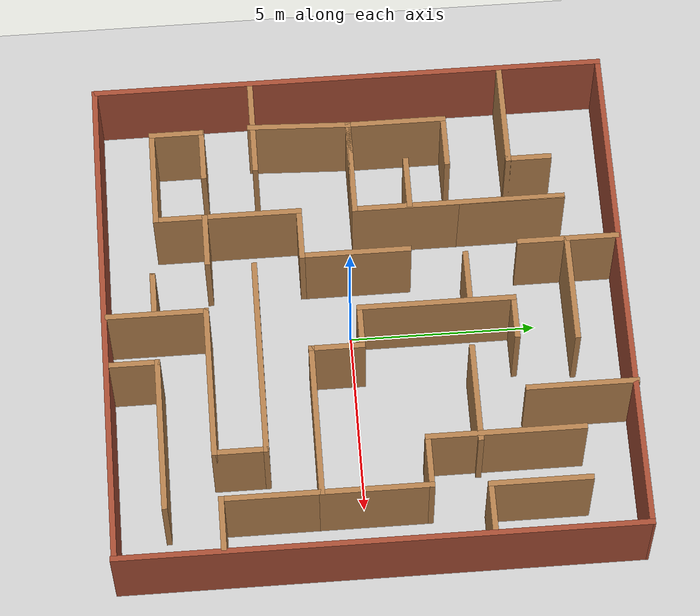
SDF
<sdf version="1.7">
 <world name="default">
  <light name="sun" type="directional">
   <pose>0 0 10 0 -0 0</pose>
   <diffuse>0.8 0.8 0.8 1</diffuse>
   <specular>0.2 0.2 0.2 1</specular>
   <attenuation>
    <range>1000</range>
    <constant>0.9</constant>
    <linear>0.01</linear>
    <quadratic>0.001</quadratic>
   </attenuation>
   <direction>-0.5 0.1 -0.9</direction>
   <spot><inner_angle>0</inner_angle><outer_angle>0</outer_angle><falloff>0</falloff></spot>
  </light>
  <model name="ground_plane">
   <static>1</static>
   <link name="link">
    <collision name="collision">
     <geometry><plane><normal>0 0 1</normal><size>100 100</size></plane></geometry>
     <surface><friction><ode><mu>100</mu><mu2>50</mu2></ode></friction></surface>
    </collision>
    <visual name="visual">
     <cast_shadows>0</cast_shadows>
     <geometry><plane><normal>0 0 1</normal><size>100 100</size></plane></geometry>
     <material>
      <script><uri>file://media/materials/scripts/gazebo.material</uri><name>Gazebo/Grey</name></script>
     </material>
    </visual>
   </link>
  </model>
  <gravity>0 0 -9.8</gravity>
  <magnetic_field>6e-06 2.3e-05 -4.2e-05</magnetic_field>
  <atmosphere type="adiabatic"/>
  <physics type="ode">
   <max_step_size>0.001</max_step_size>
   <real_time_factor>1</real_time_factor>
   <real_time_update_rate>1000</real_time_update_rate>
  </physics>
  <scene><ambient>0.4 0.4 0.4 1</ambient><background>0.7 0.7 0.7 1</background><shadows>1</shadows></scene>
  <audio><device>default</device></audio>
  <spherical_coordinates>
   <surface_model>EARTH_WGS84</surface_model>
   <latitude_deg>0</latitude_deg>
   <longitude_deg>0</longitude_deg>
   <elevation>0</elevation>
   <heading_deg>0</heading_deg>
  </spherical_coordinates>
  <model name="maze">
   <pose>0.050841 0.372654 0 0 -0 0</pose>
   <link name="Wall_0">
    <collision name="Wall_0_Collision">
     <geometry><box><size>14 0.15 2.5</size></box></geometry>
     <pose>0 0 1.25 0 -0 0</pose>
    </collision>
    <visual name="Wall_0_Visual">
     <pose>0 0 1.25 0 -0 0</pose>
     <geometry><box><size>14 0.15 2.5</size></box></geometry>
     <material>
      <script><uri>file://media/materials/scripts/gazebo.material</uri><name>Gazebo/Bricks</name></script>
      <ambient>1 1 1 1</ambient>
     </material>
     <meta><layer>0</layer></meta>
    </visual>
    <pose>-6.83692 0.010301 0 0 -0 -1.5708</pose>
   </link>
   <link name="Wall_1">
    <collision name="Wall_1_Collision">
     <geometry><box><size>13.75 0.15 2.5</size></box></geometry>
     <pose>0 0 1.25 0 -0 0</pose>
    </collision>
    <visual name="Wall_1_Visual">
     <pose>0 0 1.25 0 -0 0</pose>
     <geometry><box><size>13.75 0.15 2.5</size></box></geometry>
     <material>
      <script><uri>file://media/materials/scripts/gazebo.material</uri><name>Gazebo/Bricks</name></script>
      <ambient>1 1 1 1</ambient>
     </material>
     <meta><layer>0</layer></meta>
    </visual>
    <pose>-0.036916 -6.9147 0 0 -0 0</pose>
   </link>
   <link name="Wall_10">
    <collision name="Wall_10_Collision">
     <geometry><box><size>3 0.15 2.5</size></box></geometry>
     <pose>0 0 1.25 0 -0 0</pose>
    </collision>
    <visual name="Wall_10_Visual">
     <pose>0 0 1.25 0 -0 0</pose>
     <geometry><box><size>3 0.15 2.5</size></box></geometry>
     <material>
      <script><uri>file://media/materials/scripts/gazebo.material</uri><name>Gazebo/Wood</name></script>
      <ambient>1 1 1 1</ambient>
     </material>
     <meta><layer>0</layer></meta>
    </visual>
    <pose>-5.40875 4.20135 0 0 -0 0</pose>
   </link>
   <link name="Wall_11">
    <collision name="Wall_11_Collision">
     <geometry><box><size>1.25 0.15 2.5</size></box></geometry>
     <pose>0 0 1.25 0 -0 0</pose>
    </collision>
    <visual name="Wall_11_Visual">
     <pose>0 0 1.25 0 -0 0</pose>
     <geometry><box><size>1.25 0.15 2.5</size></box></geometry>
     <material>
      <script><uri>file://media/materials/scripts/gazebo.material</uri><name>Gazebo/Wood</name></script>
      <ambient>1 1 1 1</ambient>
     </material>
     <meta><layer>0</layer></meta>
    </visual>
    <pose>-3.98375 4.75135 0 0 -0 1.5708</pose>
   </link>
   <link name="Wall_13">
    <collision name="Wall_13_Collision">
     <geometry><box><size>5.75 0.15 2.5</size></box></geometry>
     <pose>0 0 1.25 0 -0 0</pose>
    </collision>
    <visual name="Wall_13_Visual">
     <pose>0 0 1.25 0 -0 0</pose>
     <geometry><box><size>5.75 0.15 2.5</size></box></geometry>
     <material>
      <script><uri>file://media/materials/scripts/gazebo.material</uri><name>Gazebo/Wood</name></script>
      <ambient>1 1 1 1</ambient>
     </material>
     <meta><layer>0</layer></meta>
    </visual>
    <pose>-2.75301 2.73814 0 0 -0 -1.5708</pose>
   </link>
   <link name="Wall_14">
    <collision name="Wall_14_Collision">
     <geometry><box><size>2.75 0.15 2.5</size></box></geometry>
     <pose>0 0 1.25 0 -0 0</pose>
    </collision>
    <visual name="Wall_14_Visual">
     <pose>0 0 1.25 0 -0 0</pose>
     <geometry><box><size>2.75 0.15 2.5</size></box></geometry>
     <material>
      <script><uri>file://media/materials/scripts/gazebo.material</uri><name>Gazebo/Wood</name></script>
      <ambient>1 1 1 1</ambient>
     </material>
     <meta><layer>0</layer></meta>
    </visual>
    <pose>-4.05301 -0.061861 0 0 -0 3.14159</pose>
   </link>
   <link name="Wall_15">
    <collision name="Wall_15_Collision">
     <geometry><box><size>2.75 0.15 2.5</size></box></geometry>
     <pose>0 0 1.25 0 -0 0</pose>
    </collision>
    <visual name="Wall_15_Visual">
     <pose>0 0 1.25 0 -0 0</pose>
     <geometry><box><size>2.75 0.15 2.5</size></box></geometry>
     <material>
      <script><uri>file://media/materials/scripts/gazebo.material</uri><name>Gazebo/Wood</name></script>
      <ambient>1 1 1 1</ambient>
     </material>
     <meta><layer>0</layer></meta>
    </visual>
    <pose>-5.35301 1.23814 0 0 -0 1.5708</pose>
   </link>
   <link name="Wall_16">
    <collision name="Wall_16_Collision">
     <geometry><box><size>1.5 0.15 2.5</size></box></geometry>
     <pose>0 0 1.25 0 -0 0</pose>
    </collision>
    <visual name="Wall_16_Visual">
     <pose>0 0 1.25 0 -0 0</pose>
     <geometry><box><size>1.5 0.15 2.5</size></box></geometry>
     <material>
      <script><uri>file://media/materials/scripts/gazebo.material</uri><name>Gazebo/Wood</name></script>
      <ambient>1 1 1 1</ambient>
     </material>
     <meta><layer>0</layer></meta>
    </visual>
    <pose>-4.67801 2.53814 0 0 -0 0</pose>
   </link>
   <link name="Wall_18">
    <collision name="Wall_18_Collision">
     <geometry><box><size>2.75 0.15 2.5</size></box></geometry>
     <pose>0 0 1.25 0 -0 0</pose>
    </collision>
    <visual name="Wall_18_Visual">
     <pose>0 0 1.25 0 -0 0</pose>
     <geometry><box><size>2.75 0.15 2.5</size></box></geometry>
     <material>
      <script><uri>file://media/materials/scripts/gazebo.material</uri><name>Gazebo/Wood</name></script>
      <ambient>1 1 1 1</ambient>
     </material>
     <meta><layer>0</layer></meta>
    </visual>
    <pose>-5.49857 -2.65851 0 0 -0 0</pose>
   </link>
   <link name="Wall_20">
    <collision name="Wall_20_Collision">
     <geometry><box><size>2.81923 0.15 2.5</size></box></geometry>
     <pose>0 0 1.25 0 -0 0</pose>
    </collision>
    <visual name="Wall_20_Visual">
     <pose>0 0 1.25 0 -0 0</pose>
     <geometry><box><size>2.81923 0.15 2.5</size></box></geometry>
     <material>
      <script><uri>file://media/materials/scripts/gazebo.material</uri><name>Gazebo/Wood</name></script>
      <ambient>1 1 1 1</ambient>
     </material>
     <meta><layer>0</layer></meta>
    </visual>
    <pose>-5.40739 -1.39536 0 0 -0 1.53004</pose>
   </link>
   <link name="Wall_21">
    <collision name="Wall_21_Collision">
     <geometry><box><size>2.75 0.15 2.5</size></box></geometry>
     <pose>0 0 1.25 0 -0 0</pose>
    </collision>
    <visual name="Wall_21_Visual">
     <pose>0 0 1.25 0 -0 0</pose>
     <geometry><box><size>2.75 0.15 2.5</size></box></geometry>
     <material>
      <script><uri>file://media/materials/scripts/gazebo.material</uri><name>Gazebo/Wood</name></script>
      <ambient>1 1 1 1</ambient>
     </material>
     <meta><layer>0</layer></meta>
    </visual>
    <pose>-4.05301 -0.061861 0 0 -0 0</pose>
   </link>
   <link name="Wall_22">
    <collision name="Wall_22_Collision">
     <geometry><box><size>5.75 0.15 2.5</size></box></geometry>
     <pose>0 0 1.25 0 -0 0</pose>
    </collision>
    <visual name="Wall_22_Visual">
     <pose>0 0 1.25 0 -0 0</pose>
     <geometry><box><size>5.75 0.15 2.5</size></box></geometry>
     <material>
      <script><uri>file://media/materials/scripts/gazebo.material</uri><name>Gazebo/Wood</name></script>
      <ambient>1 1 1 1</ambient>
     </material>
     <meta><layer>0</layer></meta>
    </visual>
    <pose>-2.75301 2.73814 0 0 -0 1.5708</pose>
   </link>
   <link name="Wall_24">
    <collision name="Wall_24_Collision">
     <geometry><box><size>1.5 0.15 2.5</size></box></geometry>
     <pose>0 0 1.25 0 -0 0</pose>
    </collision>
    <visual name="Wall_24_Visual">
     <pose>0 0 1.25 0 -0 0</pose>
     <geometry><box><size>1.5 0.15 2.5</size></box></geometry>
     <material>
      <script><uri>file://media/materials/scripts/gazebo.material</uri><name>Gazebo/Wood</name></script>
      <ambient>1 1 1 1</ambient>
     </material>
     <meta><layer>0</layer></meta>
    </visual>
    <pose>-3.46319 1.42222 0 0 -0 3.14159</pose>
   </link>
   <link name="Wall_26">
    <collision name="Wall_26_Collision">
     <geometry><box><size>2.75 0.15 2.5</size></box></geometry>
     <pose>0 0 1.25 0 -0 0</pose>
    </collision>
    <visual name="Wall_26_Visual">
     <pose>0 0 1.25 0 -0 0</pose>
     <geometry><box><size>2.75 0.15 2.5</size></box></geometry>
     <material>
      <script><uri>file://media/materials/scripts/gazebo.material</uri><name>Gazebo/Wood</name></script>
      <ambient>1 1 1 1</ambient>
     </material>
     <meta><layer>0</layer></meta>
    </visual>
    <pose>-0.009067 -5.50961 0 0 -0 1.5708</pose>
   </link>
   <link name="Wall_27">
    <collision name="Wall_27_Collision">
     <geometry><box><size>4.25 0.15 2.5</size></box></geometry>
     <pose>0 0 1.25 0 -0 0</pose>
    </collision>
    <visual name="Wall_27_Visual">
     <pose>0 0 1.25 0 -0 0</pose>
     <geometry><box><size>4.25 0.15 2.5</size></box></geometry>
     <material>
      <script><uri>file://media/materials/scripts/gazebo.material</uri><name>Gazebo/Wood</name></script>
      <ambient>1 1 1 1</ambient>
     </material>
     <meta><layer>0</layer></meta>
    </visual>
    <pose>2.04093 -4.20961 0 0 -0 0</pose>
   </link>
   <link name="Wall_28">
    <collision name="Wall_28_Collision">
     <geometry><box><size>1.5 0.15 2.5</size></box></geometry>
     <pose>0 0 1.25 0 -0 0</pose>
    </collision>
    <visual name="Wall_28_Visual">
     <pose>0 0 1.25 0 -0 0</pose>
     <geometry><box><size>1.5 0.15 2.5</size></box></geometry>
     <material>
      <script><uri>file://media/materials/scripts/gazebo.material</uri><name>Gazebo/Wood</name></script>
      <ambient>1 1 1 1</ambient>
     </material>
     <meta><layer>0</layer></meta>
    </visual>
    <pose>4.09093 -3.53461 0 0 -0 1.5708</pose>
   </link>
   <link name="Wall_29">
    <collision name="Wall_29_Collision">
     <geometry><box><size>5.5 0.15 2.5</size></box></geometry>
     <pose>0 0 1.25 0 -0 0</pose>
    </collision>
    <visual name="Wall_29_Visual">
     <pose>0 0 1.25 0 -0 0</pose>
     <geometry><box><size>5.5 0.15 2.5</size></box></geometry>
     <material>
      <script><uri>file://media/materials/scripts/gazebo.material</uri><name>Gazebo/Wood</name></script>
      <ambient>1 1 1 1</ambient>
     </material>
     <meta><layer>0</layer></meta>
    </visual>
    <pose>1.41593 -2.85961 0 0 -0 3.14159</pose>
   </link>
   <link name="Wall_3">
    <collision name="Wall_3_Collision">
     <geometry><box><size>14 0.15 2.5</size></box></geometry>
     <pose>0 0 1.25 0 -0 0</pose>
    </collision>
    <visual name="Wall_3_Visual">
     <pose>0 0 1.25 0 -0 0</pose>
     <geometry><box><size>14 0.15 2.5</size></box></geometry>
     <material>
      <script><uri>file://media/materials/scripts/gazebo.material</uri><name>Gazebo/Bricks</name></script>
      <ambient>1 1 1 1</ambient>
     </material>
     <meta><layer>0</layer></meta>
    </visual>
    <pose>6.83692 -0.020289 0 0 -0 -1.5708</pose>
   </link>
   <link name="Wall_31">
    <collision name="Wall_31_Collision">
     <geometry><box><size>1.5 0.15 2.5</size></box></geometry>
     <pose>0 0 1.25 0 -0 0</pose>
    </collision>
    <visual name="Wall_31_Visual">
     <pose>0 0 1.25 0 -0 0</pose>
     <geometry><box><size>1.5 0.15 2.5</size></box></geometry>
     <material>
      <script><uri>file://media/materials/scripts/gazebo.material</uri><name>Gazebo/Wood</name></script>
      <ambient>1 1 1 1</ambient>
     </material>
     <meta><layer>0</layer></meta>
    </visual>
    <pose>-4.72963 -4.06566 0 0 -0 3.14159</pose>
   </link>
   <link name="Wall_32">
    <collision name="Wall_32_Collision">
     <geometry><box><size>1.5 0.15 2.5</size></box></geometry>
     <pose>0 0 1.25 0 -0 0</pose>
    </collision>
    <visual name="Wall_32_Visual">
     <pose>0 0 1.25 0 -0 0</pose>
     <geometry><box><size>1.5 0.15 2.5</size></box></geometry>
     <material>
      <script><uri>file://media/materials/scripts/gazebo.material</uri><name>Gazebo/Wood</name></script>
      <ambient>1 1 1 1</ambient>
     </material>
     <meta><layer>0</layer></meta>
    </visual>
    <pose>-5.40463 -4.74066 0 0 -0 -1.5708</pose>
   </link>
   <link name="Wall_33">
    <collision name="Wall_33_Collision">
     <geometry><box><size>2.75 0.15 2.5</size></box></geometry>
     <pose>0 0 1.25 0 -0 0</pose>
    </collision>
    <visual name="Wall_33_Visual">
     <pose>0 0 1.25 0 -0 0</pose>
     <geometry><box><size>2.75 0.15 2.5</size></box></geometry>
     <material>
      <script><uri>file://media/materials/scripts/gazebo.material</uri><name>Gazebo/Wood</name></script>
      <ambient>1 1 1 1</ambient>
     </material>
     <meta><layer>0</layer></meta>
    </visual>
    <pose>-4.10463 -5.41566 0 0 -0 0</pose>
   </link>
   <link name="Wall_34">
    <collision name="Wall_34_Collision">
     <geometry><box><size>4 0.15 2.5</size></box></geometry>
     <pose>0 0 1.25 0 -0 0</pose>
    </collision>
    <visual name="Wall_34_Visual">
     <pose>0 0 1.25 0 -0 0</pose>
     <geometry><box><size>4 0.15 2.5</size></box></geometry>
     <material>
      <script><uri>file://media/materials/scripts/gazebo.material</uri><name>Gazebo/Wood</name></script>
      <ambient>1 1 1 1</ambient>
     </material>
     <meta><layer>0</layer></meta>
    </visual>
    <pose>-2.80463 -3.49066 0 0 -0 1.5708</pose>
   </link>
   <link name="Wall_35">
    <collision name="Wall_35_Collision">
     <geometry><box><size>1.5 0.15 2.5</size></box></geometry>
     <pose>0 0 1.25 0 -0 0</pose>
    </collision>
    <visual name="Wall_35_Visual">
     <pose>0 0 1.25 0 -0 0</pose>
     <geometry><box><size>1.5 0.15 2.5</size></box></geometry>
     <material>
      <script><uri>file://media/materials/scripts/gazebo.material</uri><name>Gazebo/Wood</name></script>
      <ambient>1 1 1 1</ambient>
     </material>
     <meta><layer>0</layer></meta>
    </visual>
    <pose>-2.12962 -1.56566 0 0 -0 0</pose>
   </link>
   <link name="Wall_36">
    <collision name="Wall_36_Collision">
     <geometry><box><size>3 0.15 2.5</size></box></geometry>
     <pose>0 0 1.25 0 -0 0</pose>
    </collision>
    <visual name="Wall_36_Visual">
     <pose>0 0 1.25 0 -0 0</pose>
     <geometry><box><size>3 0.15 2.5</size></box></geometry>
     <material>
      <script><uri>file://media/materials/scripts/gazebo.material</uri><name>Gazebo/Wood</name></script>
      <ambient>1 1 1 1</ambient>
     </material>
     <meta><layer>0</layer></meta>
    </visual>
    <pose>-1.45463 -0.140663 0 0 -0 1.5708</pose>
   </link>
   <link name="Wall_39">
    <collision name="Wall_39_Collision">
     <geometry><box><size>1.5 0.15 2.5</size></box></geometry>
     <pose>0 0 1.25 0 -0 0</pose>
    </collision>
    <visual name="Wall_39_Visual">
     <pose>0 0 1.25 0 -0 0</pose>
     <geometry><box><size>1.5 0.15 2.5</size></box></geometry>
     <material>
      <script><uri>file://media/materials/scripts/gazebo.material</uri><name>Gazebo/Wood</name></script>
      <ambient>1 1 1 1</ambient>
     </material>
     <meta><layer>0</layer></meta>
    </visual>
    <pose>-2.11319 -4.10084 0 0 -0 0</pose>
   </link>
   <link name="Wall_41">
    <collision name="Wall_41_Collision">
     <geometry><box><size>1.5 0.15 2.5</size></box></geometry>
     <pose>0 0 1.25 0 -0 0</pose>
    </collision>
    <visual name="Wall_41_Visual">
     <pose>0 0 1.25 0 -0 0</pose>
     <geometry><box><size>1.5 0.15 2.5</size></box></geometry>
     <material>
      <script><uri>file://media/materials/scripts/gazebo.material</uri><name>Gazebo/Wood</name></script>
      <ambient>1 1 1 1</ambient>
     </material>
     <meta><layer>0</layer></meta>
    </visual>
    <pose>6.07026 -4.10084 0 0 -0 3.14159</pose>
   </link>
   <link name="Wall_42">
    <collision name="Wall_42_Collision">
     <geometry><box><size>2.75 0.15 2.5</size></box></geometry>
     <pose>0 0 1.25 0 -0 0</pose>
    </collision>
    <visual name="Wall_42_Visual">
     <pose>0 0 1.25 0 -0 0</pose>
     <geometry><box><size>2.75 0.15 2.5</size></box></geometry>
     <material>
      <script><uri>file://media/materials/scripts/gazebo.material</uri><name>Gazebo/Wood</name></script>
      <ambient>1 1 1 1</ambient>
     </material>
     <meta><layer>0</layer></meta>
    </visual>
    <pose>5.39525 -2.80084 0 0 -0 1.5708</pose>
   </link>
   <link name="Wall_43">
    <collision name="Wall_43_Collision">
     <geometry><box><size>4.25 0.15 2.5</size></box></geometry>
     <pose>0 0 1.25 0 -0 0</pose>
    </collision>
    <visual name="Wall_43_Visual">
     <pose>0 0 1.25 0 -0 0</pose>
     <geometry><box><size>4.25 0.15 2.5</size></box></geometry>
     <material>
      <script><uri>file://media/materials/scripts/gazebo.material</uri><name>Gazebo/Wood</name></script>
      <ambient>1 1 1 1</ambient>
     </material>
     <meta><layer>0</layer></meta>
    </visual>
    <pose>3.34525 -1.50084 0 0 -0 3.14159</pose>
   </link>
   <link name="Wall_44">
    <collision name="Wall_44_Collision">
     <geometry><box><size>1.5 0.15 2.5</size></box></geometry>
     <pose>0 0 1.25 0 -0 0</pose>
    </collision>
    <visual name="Wall_44_Visual">
     <pose>0 0 1.25 0 -0 0</pose>
     <geometry><box><size>1.5 0.15 2.5</size></box></geometry>
     <material>
      <script><uri>file://media/materials/scripts/gazebo.material</uri><name>Gazebo/Wood</name></script>
      <ambient>1 1 1 1</ambient>
     </material>
     <meta><layer>0</layer></meta>
    </visual>
    <pose>1.29526 -0.825842 0 0 -0 1.5708</pose>
   </link>
   <link name="Wall_45">
    <collision name="Wall_45_Collision">
     <geometry><box><size>1.25 0.15 2.5</size></box></geometry>
     <pose>0 0 1.25 0 -0 0</pose>
    </collision>
    <visual name="Wall_45_Visual">
     <pose>0 0 1.25 0 -0 0</pose>
     <geometry><box><size>1.25 0.15 2.5</size></box></geometry>
     <material>
      <script><uri>file://media/materials/scripts/gazebo.material</uri><name>Gazebo/Wood</name></script>
      <ambient>1 1 1 1</ambient>
     </material>
     <meta><layer>0</layer></meta>
    </visual>
    <pose>0.745255 -0.150842 0 0 -0 3.14159</pose>
   </link>
   <link name="Wall_46">
    <collision name="Wall_46_Collision">
     <geometry><box><size>4.25 0.15 2.5</size></box></geometry>
     <pose>0 0 1.25 0 -0 0</pose>
    </collision>
    <visual name="Wall_46_Visual">
     <pose>0 0 1.25 0 -0 0</pose>
     <geometry><box><size>4.25 0.15 2.5</size></box></geometry>
     <material>
      <script><uri>file://media/materials/scripts/gazebo.material</uri><name>Gazebo/Wood</name></script>
      <ambient>1 1 1 1</ambient>
     </material>
     <meta><layer>0</layer></meta>
    </visual>
    <pose>0.195255 1.89916 0 0 -0 1.5708</pose>
   </link>
   <link name="Wall_47">
    <collision name="Wall_47_Collision">
     <geometry><box><size>1.25 0.15 2.5</size></box></geometry>
     <pose>0 0 1.25 0 -0 0</pose>
    </collision>
    <visual name="Wall_47_Visual">
     <pose>0 0 1.25 0 -0 0</pose>
     <geometry><box><size>1.25 0.15 2.5</size></box></geometry>
     <material>
      <script><uri>file://media/materials/scripts/gazebo.material</uri><name>Gazebo/Wood</name></script>
      <ambient>1 1 1 1</ambient>
     </material>
     <meta><layer>0</layer></meta>
    </visual>
    <pose>0.745255 3.94916 0 0 -0 0</pose>
   </link>
   <link name="Wall_49">
    <collision name="Wall_49_Collision">
     <geometry><box><size>1.5 0.15 2.5</size></box></geometry>
     <pose>0 0 1.25 0 -0 0</pose>
    </collision>
    <visual name="Wall_49_Visual">
     <pose>0 0 1.25 0 -0 0</pose>
     <geometry><box><size>1.5 0.15 2.5</size></box></geometry>
     <material>
      <script><uri>file://media/materials/scripts/gazebo.material</uri><name>Gazebo/Wood</name></script>
      <ambient>1 1 1 1</ambient>
     </material>
     <meta><layer>0</layer></meta>
    </visual>
    <pose>-0.508174 2.7942 0 0 -0 3.14159</pose>
   </link>
   <link name="Wall_51">
    <collision name="Wall_51_Collision">
     <geometry><box><size>3 0.15 2.5</size></box></geometry>
     <pose>0 0 1.25 0 -0 0</pose>
    </collision>
    <visual name="Wall_51_Visual">
     <pose>0 0 1.25 0 -0 0</pose>
     <geometry><box><size>3 0.15 2.5</size></box></geometry>
     <material>
      <script><uri>file://media/materials/scripts/gazebo.material</uri><name>Gazebo/Wood</name></script>
      <ambient>1 1 1 1</ambient>
     </material>
     <meta><layer>0</layer></meta>
    </visual>
    <pose>2.84041 5.52029 0 0 -0 -1.5708</pose>
   </link>
   <link name="Wall_53">
    <collision name="Wall_53_Collision">
     <geometry><box><size>3 0.15 2.5</size></box></geometry>
     <pose>0 0 1.25 0 -0 0</pose>
    </collision>
    <visual name="Wall_53_Visual">
     <pose>0 0 1.25 0 -0 0</pose>
     <geometry><box><size>3 0.15 2.5</size></box></geometry>
     <material>
      <script><uri>file://media/materials/scripts/gazebo.material</uri><name>Gazebo/Wood</name></script>
      <ambient>1 1 1 1</ambient>
     </material>
     <meta><layer>0</layer></meta>
    </visual>
    <pose>5.39525 -0.075842 0 0 -0 1.5708</pose>
   </link>
   <link name="Wall_54">
    <collision name="Wall_54_Collision">
     <geometry><box><size>1.5 0.15 2.5</size></box></geometry>
     <pose>0 0 1.25 0 -0 0</pose>
    </collision>
    <visual name="Wall_54_Visual">
     <pose>0 0 1.25 0 -0 0</pose>
     <geometry><box><size>1.5 0.15 2.5</size></box></geometry>
     <material>
      <script><uri>file://media/materials/scripts/gazebo.material</uri><name>Gazebo/Wood</name></script>
      <ambient>1 1 1 1</ambient>
     </material>
     <meta><layer>0</layer></meta>
    </visual>
    <pose>4.72025 1.34916 0 0 -0 3.14159</pose>
   </link>
   <link name="Wall_55">
    <collision name="Wall_55_Collision">
     <geometry><box><size>4.25 0.15 2.5</size></box></geometry>
     <pose>0 0 1.25 0 -0 0</pose>
    </collision>
    <visual name="Wall_55_Visual">
     <pose>0 0 1.25 0 -0 0</pose>
     <geometry><box><size>4.25 0.15 2.5</size></box></geometry>
     <material>
      <script><uri>file://media/materials/scripts/gazebo.material</uri><name>Gazebo/Wood</name></script>
      <ambient>1 1 1 1</ambient>
     </material>
     <meta><layer>0</layer></meta>
    </visual>
    <pose>4.04526 3.39916 0 0 -0 1.5708</pose>
   </link>
   <link name="Wall_58">
    <collision name="Wall_58_Collision">
     <geometry><box><size>2.75 0.15 2.5</size></box></geometry>
     <pose>0 0 1.25 0 -0 0</pose>
    </collision>
    <visual name="Wall_58_Visual">
     <pose>0 0 1.25 0 -0 0</pose>
     <geometry><box><size>2.75 0.15 2.5</size></box></geometry>
     <material>
      <script><uri>file://media/materials/scripts/gazebo.material</uri><name>Gazebo/Wood</name></script>
      <ambient>1 1 1 1</ambient>
     </material>
     <meta><layer>0</layer></meta>
    </visual>
    <pose>2.87721 2.72384 0 0 -0 3.14159</pose>
   </link>
   <link name="Wall_6">
    <collision name="Wall_6_Collision">
     <geometry><box><size>13.8239 0.15 2.5</size></box></geometry>
     <pose>0 0 1.25 0 -0 0</pose>
    </collision>
    <visual name="Wall_6_Visual">
     <pose>0 0 1.25 0 -0 0</pose>
     <geometry><box><size>13.8239 0.15 2.5</size></box></geometry>
     <material>
      <script><uri>file://media/materials/scripts/gazebo.material</uri><name>Gazebo/Bricks</name></script>
      <ambient>1 1 1 1</ambient>
     </material>
     <meta><layer>0</layer></meta>
    </visual>
    <pose>-0 6.92001 0 0 -0 -0.002237</pose>
   </link>
   <link name="Wall_60">
    <collision name="Wall_60_Collision">
     <geometry><box><size>2.75 0.15 2.5</size></box></geometry>
     <pose>0 0 1.25 0 -0 0</pose>
    </collision>
    <visual name="Wall_60_Visual">
     <pose>0 0 1.25 0 -0 0</pose>
     <geometry><box><size>2.75 0.15 2.5</size></box></geometry>
     <material>
      <script><uri>file://media/materials/scripts/gazebo.material</uri><name>Gazebo/Wood</name></script>
      <ambient>1 1 1 1</ambient>
     </material>
     <meta><layer>0</layer></meta>
    </visual>
    <pose>5.47882 4.16778 0 0 -0 -1.5708</pose>
   </link>
   <link name="Wall_61">
    <collision name="Wall_61_Collision">
     <geometry><box><size>1.5 0.15 2.5</size></box></geometry>
     <pose>0 0 1.25 0 -0 0</pose>
    </collision>
    <visual name="Wall_61_Visual">
     <pose>0 0 1.25 0 -0 0</pose>
     <geometry><box><size>1.5 0.15 2.5</size></box></geometry>
     <material>
      <script><uri>file://media/materials/scripts/gazebo.material</uri><name>Gazebo/Wood</name></script>
      <ambient>1 1 1 1</ambient>
     </material>
     <meta><layer>0</layer></meta>
    </visual>
    <pose>6.15382 2.86778 0 0 -0 0</pose>
   </link>
   <link name="Wall_63">
    <collision name="Wall_63_Collision">
     <geometry><box><size>2.75 0.15 2.5</size></box></geometry>
     <pose>0 0 1.25 0 -0 0</pose>
    </collision>
    <visual name="Wall_63_Visual">
     <pose>0 0 1.25 0 -0 0</pose>
     <geometry><box><size>2.75 0.15 2.5</size></box></geometry>
     <material>
      <script><uri>file://media/materials/scripts/gazebo.material</uri><name>Gazebo/Wood</name></script>
      <ambient>1 1 1 1</ambient>
     </material>
     <meta><layer>0</layer></meta>
    </visual>
    <pose>-1.4514 5.57493 0 0 -0 -1.5708</pose>
   </link>
   <link name="Wall_66">
    <collision name="Wall_66_Collision">
     <geometry><box><size>3 0.15 2.5</size></box></geometry>
     <pose>0 0 1.25 0 -0 0</pose>
    </collision>
    <visual name="Wall_66_Visual">
     <pose>0 0 1.25 0 -0 0</pose>
     <geometry><box><size>3 0.15 2.5</size></box></geometry>
     <material>
      <script><uri>file://media/materials/scripts/gazebo.material</uri><name>Gazebo/Wood</name></script>
      <ambient>1 1 1 1</ambient>
     </material>
     <meta><layer>0</layer></meta>
    </visual>
    <pose>0.008782 5.53814 0 0 -0 0</pose>
   </link>
   <link name="Wall_68">
    <collision name="Wall_68_Collision">
     <geometry><box><size>1.5 0.15 2.5</size></box></geometry>
     <pose>0 0 1.25 0 -0 0</pose>
    </collision>
    <visual name="Wall_68_Visual">
     <pose>0 0 1.25 0 -0 0</pose>
     <geometry><box><size>1.5 0.15 2.5</size></box></geometry>
     <material>
      <script><uri>file://media/materials/scripts/gazebo.material</uri><name>Gazebo/Wood</name></script>
      <ambient>1 1 1 1</ambient>
     </material>
     <meta><layer>0</layer></meta>
    </visual>
    <pose>1.39808 -6.24014 0 0 -0 1.5708</pose>
   </link>
   <link name="Wall_69">
    <collision name="Wall_69_Collision">
     <geometry><box><size>4.25 0.15 2.5</size></box></geometry>
     <pose>0 0 1.25 0 -0 0</pose>
    </collision>
    <visual name="Wall_69_Visual">
     <pose>0 0 1.25 0 -0 0</pose>
     <geometry><box><size>4.25 0.15 2.5</size></box></geometry>
     <material>
      <script><uri>file://media/materials/scripts/gazebo.material</uri><name>Gazebo/Wood</name></script>
      <ambient>1 1 1 1</ambient>
     </material>
     <meta><layer>0</layer></meta>
    </visual>
    <pose>3.44808 -5.56514 0 0 -0 0</pose>
   </link>
   <link name="Wall_72">
    <collision name="Wall_72_Collision">
     <geometry><box><size>1 0.15 2.5</size></box></geometry>
     <pose>0 0 1.25 0 -0 0</pose>
    </collision>
    <visual name="Wall_72_Visual">
     <pose>0 0 1.25 0 -0 0</pose>
     <geometry><box><size>1 0.15 2.5</size></box></geometry>
     <material>
      <script><uri>file://media/materials/scripts/gazebo.material</uri><name>Gazebo/Wood</name></script>
      <ambient>1 1 1 1</ambient>
     </material>
     <meta><layer>0</layer></meta>
    </visual>
    <pose>-0.715498 -5.57835 0 0 -0 3.14159</pose>
   </link>
   <link name="Wall_75">
    <collision name="Wall_75_Collision">
     <geometry><box><size>1.25 0.15 2.5</size></box></geometry>
     <pose>0 0 1.25 0 -0 0</pose>
    </collision>
    <visual name="Wall_75_Visual">
     <pose>0 0 1.25 0 -0 0</pose>
     <geometry><box><size>1.25 0.15 2.5</size></box></geometry>
     <material>
      <script><uri>file://media/materials/scripts/gazebo.material</uri><name>Gazebo/Wood</name></script>
      <ambient>1 1 1 1</ambient>
     </material>
     <meta><layer>0</layer></meta>
    </visual>
    <pose>-0.590498 -5.57835 0 0 -0 0</pose>
   </link>
   <static>1</static>
  </model>
 </world>
</sdf>
